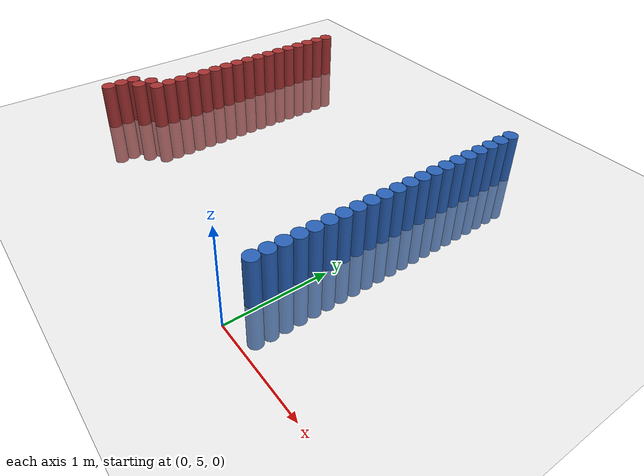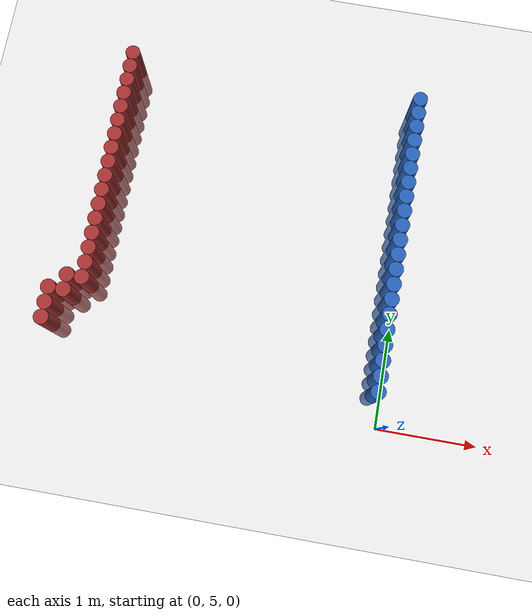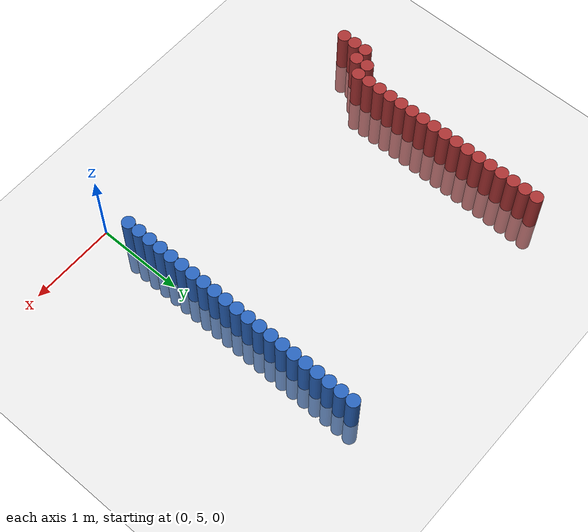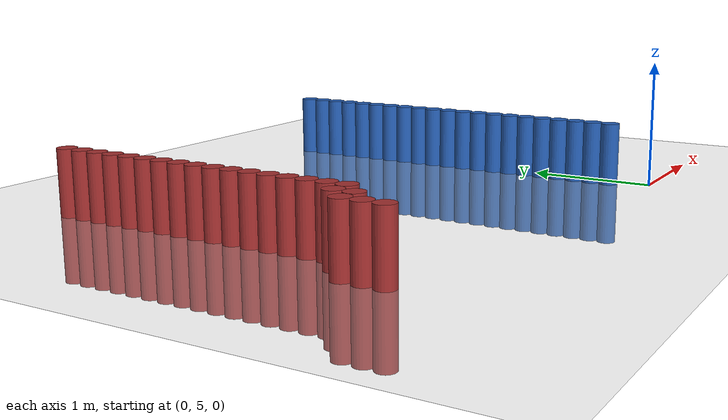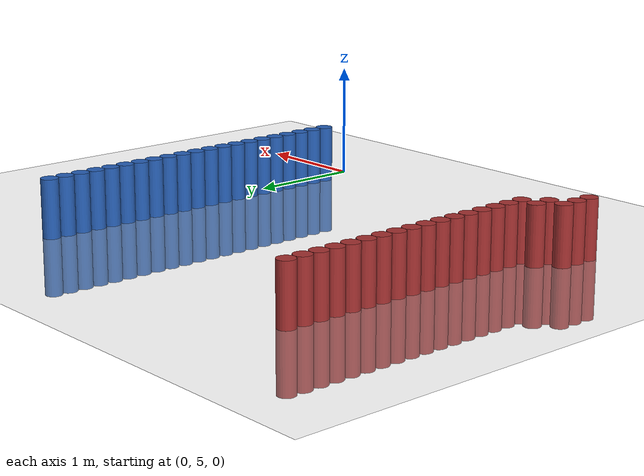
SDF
<sdf version="1.6">
 <world name="default">
  <model name="ground_plane">
   <static>1</static>
   <link name="link">
    <collision name="collision">
     <geometry><plane><normal>0 0 1</normal><size>100 100</size></plane></geometry>
     <surface><friction><ode><mu>100</mu><mu2>50</mu2></ode></friction></surface>
    </collision>
    <visual name="visual">
     <cast_shadows>0</cast_shadows>
     <geometry><plane><normal>0 0 1</normal><size>100 100</size></plane></geometry>
     <material>
      <script><uri>file://media/materials/scripts/gazebo.material</uri><name>Gazebo/Grey</name></script>
     </material>
    </visual>
   </link>
  </model>
  <model name="unit_cylinder_282">
   <static>1</static>
   <pose>-3.375000 5.475000 0.000000 0.000000 0.000000 0.000000</pose>
   <link name="link">
    <inertial>
     <mass>1</mass>
     <inertia><ixx>0.145833</ixx><ixy>0</ixy><ixz>0</ixz><iyy>0.145833</iyy><iyz>0</iyz><izz>0.125</izz></inertia>
    </inertial>
    <collision name="collision">
     <geometry><cylinder><radius>0.075000</radius><length>1</length></cylinder></geometry>
    </collision>
    <visual name="visual">
     <geometry><cylinder><radius>0.075000</radius><length>1</length></cylinder></geometry>
     <material>
      <ambient>0.648000 0.192000 0.192000 1</ambient>
      <diffuse>0.648000 0.192000 0.192000 1</diffuse>
     </material>
     <material>
      <script><name>Gazebo/Grey</name><uri>file://media/materials/scripts/gazebo.material</uri></script>
     </material>
    </visual>
   </link>
  </model>
  <model name="unit_cylinder_283">
   <static>1</static>
   <pose>-3.375000 5.625000 0.000000 0.000000 0.000000 0.000000</pose>
   <link name="link">
    <inertial>
     <mass>1</mass>
     <inertia><ixx>0.145833</ixx><ixy>0</ixy><ixz>0</ixz><iyy>0.145833</iyy><iyz>0</iyz><izz>0.125</izz></inertia>
    </inertial>
    <collision name="collision">
     <geometry><cylinder><radius>0.075000</radius><length>1</length></cylinder></geometry>
    </collision>
    <visual name="visual">
     <geometry><cylinder><radius>0.075000</radius><length>1</length></cylinder></geometry>
     <material>
      <ambient>0.648000 0.192000 0.192000 1</ambient>
      <diffuse>0.648000 0.192000 0.192000 1</diffuse>
     </material>
     <material>
      <script><name>Gazebo/Grey</name><uri>file://media/materials/scripts/gazebo.material</uri></script>
     </material>
    </visual>
   </link>
  </model>
  <model name="unit_cylinder_284">
   <static>1</static>
   <pose>-3.375000 5.775000 0.000000 0.000000 0.000000 0.000000</pose>
   <link name="link">
    <inertial>
     <mass>1</mass>
     <inertia><ixx>0.145833</ixx><ixy>0</ixy><ixz>0</ixz><iyy>0.145833</iyy><iyz>0</iyz><izz>0.125</izz></inertia>
    </inertial>
    <collision name="collision">
     <geometry><cylinder><radius>0.075000</radius><length>1</length></cylinder></geometry>
    </collision>
    <visual name="visual">
     <geometry><cylinder><radius>0.075000</radius><length>1</length></cylinder></geometry>
     <material>
      <ambient>0.648000 0.192000 0.192000 1</ambient>
      <diffuse>0.648000 0.192000 0.192000 1</diffuse>
     </material>
     <material>
      <script><name>Gazebo/Grey</name><uri>file://media/materials/scripts/gazebo.material</uri></script>
     </material>
    </visual>
   </link>
  </model>
  <model name="unit_cylinder_288">
   <static>1</static>
   <pose>-3.225000 5.775000 0.000000 0.000000 0.000000 0.000000</pose>
   <link name="link">
    <inertial>
     <mass>1</mass>
     <inertia><ixx>0.145833</ixx><ixy>0</ixy><ixz>0</ixz><iyy>0.145833</iyy><iyz>0</iyz><izz>0.125</izz></inertia>
    </inertial>
    <collision name="collision">
     <geometry><cylinder><radius>0.075000</radius><length>1</length></cylinder></geometry>
    </collision>
    <visual name="visual">
     <geometry><cylinder><radius>0.075000</radius><length>1</length></cylinder></geometry>
     <material>
      <ambient>0.648000 0.192000 0.192000 1</ambient>
      <diffuse>0.648000 0.192000 0.192000 1</diffuse>
     </material>
     <material>
      <script><name>Gazebo/Grey</name><uri>file://media/materials/scripts/gazebo.material</uri></script>
     </material>
    </visual>
   </link>
  </model>
  <model name="unit_cylinder_289">
   <static>1</static>
   <pose>-3.225000 5.925000 0.000000 0.000000 0.000000 0.000000</pose>
   <link name="link">
    <inertial>
     <mass>1</mass>
     <inertia><ixx>0.145833</ixx><ixy>0</ixy><ixz>0</ixz><iyy>0.145833</iyy><iyz>0</iyz><izz>0.125</izz></inertia>
    </inertial>
    <collision name="collision">
     <geometry><cylinder><radius>0.075000</radius><length>1</length></cylinder></geometry>
    </collision>
    <visual name="visual">
     <geometry><cylinder><radius>0.075000</radius><length>1</length></cylinder></geometry>
     <material>
      <ambient>0.648000 0.192000 0.192000 1</ambient>
      <diffuse>0.648000 0.192000 0.192000 1</diffuse>
     </material>
     <material>
      <script><name>Gazebo/Grey</name><uri>file://media/materials/scripts/gazebo.material</uri></script>
     </material>
    </visual>
   </link>
  </model>
  <model name="unit_cylinder_295">
   <static>1</static>
   <pose>-3.075000 5.925000 0.000000 0.000000 0.000000 0.000000</pose>
   <link name="link">
    <inertial>
     <mass>1</mass>
     <inertia><ixx>0.145833</ixx><ixy>0</ixy><ixz>0</ixz><iyy>0.145833</iyy><iyz>0</iyz><izz>0.125</izz></inertia>
    </inertial>
    <collision name="collision">
     <geometry><cylinder><radius>0.075000</radius><length>1</length></cylinder></geometry>
    </collision>
    <visual name="visual">
     <geometry><cylinder><radius>0.075000</radius><length>1</length></cylinder></geometry>
     <material>
      <ambient>0.648000 0.192000 0.192000 1</ambient>
      <diffuse>0.648000 0.192000 0.192000 1</diffuse>
     </material>
     <material>
      <script><name>Gazebo/Grey</name><uri>file://media/materials/scripts/gazebo.material</uri></script>
     </material>
    </visual>
   </link>
  </model>
  <model name="unit_cylinder_296">
   <static>1</static>
   <pose>-3.075000 6.075000 0.000000 0.000000 0.000000 0.000000</pose>
   <link name="link">
    <inertial>
     <mass>1</mass>
     <inertia><ixx>0.145833</ixx><ixy>0</ixy><ixz>0</ixz><iyy>0.145833</iyy><iyz>0</iyz><izz>0.125</izz></inertia>
    </inertial>
    <collision name="collision">
     <geometry><cylinder><radius>0.075000</radius><length>1</length></cylinder></geometry>
    </collision>
    <visual name="visual">
     <geometry><cylinder><radius>0.075000</radius><length>1</length></cylinder></geometry>
     <material>
      <ambient>0.648000 0.192000 0.192000 1</ambient>
      <diffuse>0.648000 0.192000 0.192000 1</diffuse>
     </material>
     <material>
      <script><name>Gazebo/Grey</name><uri>file://media/materials/scripts/gazebo.material</uri></script>
     </material>
    </visual>
   </link>
  </model>
  <model name="unit_cylinder_297">
   <static>1</static>
   <pose>-3.075000 6.225000 0.000000 0.000000 0.000000 0.000000</pose>
   <link name="link">
    <inertial>
     <mass>1</mass>
     <inertia><ixx>0.145833</ixx><ixy>0</ixy><ixz>0</ixz><iyy>0.145833</iyy><iyz>0</iyz><izz>0.125</izz></inertia>
    </inertial>
    <collision name="collision">
     <geometry><cylinder><radius>0.075000</radius><length>1</length></cylinder></geometry>
    </collision>
    <visual name="visual">
     <geometry><cylinder><radius>0.075000</radius><length>1</length></cylinder></geometry>
     <material>
      <ambient>0.648000 0.192000 0.192000 1</ambient>
      <diffuse>0.648000 0.192000 0.192000 1</diffuse>
     </material>
     <material>
      <script><name>Gazebo/Grey</name><uri>file://media/materials/scripts/gazebo.material</uri></script>
     </material>
    </visual>
   </link>
  </model>
  <model name="unit_cylinder_298">
   <static>1</static>
   <pose>-3.075000 6.375000 0.000000 0.000000 0.000000 0.000000</pose>
   <link name="link">
    <inertial>
     <mass>1</mass>
     <inertia><ixx>0.145833</ixx><ixy>0</ixy><ixz>0</ixz><iyy>0.145833</iyy><iyz>0</iyz><izz>0.125</izz></inertia>
    </inertial>
    <collision name="collision">
     <geometry><cylinder><radius>0.075000</radius><length>1</length></cylinder></geometry>
    </collision>
    <visual name="visual">
     <geometry><cylinder><radius>0.075000</radius><length>1</length></cylinder></geometry>
     <material>
      <ambient>0.648000 0.192000 0.192000 1</ambient>
      <diffuse>0.648000 0.192000 0.192000 1</diffuse>
     </material>
     <material>
      <script><name>Gazebo/Grey</name><uri>file://media/materials/scripts/gazebo.material</uri></script>
     </material>
    </visual>
   </link>
  </model>
  <model name="unit_cylinder_299">
   <static>1</static>
   <pose>-3.075000 6.525000 0.000000 0.000000 0.000000 0.000000</pose>
   <link name="link">
    <inertial>
     <mass>1</mass>
     <inertia><ixx>0.145833</ixx><ixy>0</ixy><ixz>0</ixz><iyy>0.145833</iyy><iyz>0</iyz><izz>0.125</izz></inertia>
    </inertial>
    <collision name="collision">
     <geometry><cylinder><radius>0.075000</radius><length>1</length></cylinder></geometry>
    </collision>
    <visual name="visual">
     <geometry><cylinder><radius>0.075000</radius><length>1</length></cylinder></geometry>
     <material>
      <ambient>0.648000 0.192000 0.192000 1</ambient>
      <diffuse>0.648000 0.192000 0.192000 1</diffuse>
     </material>
     <material>
      <script><name>Gazebo/Grey</name><uri>file://media/materials/scripts/gazebo.material</uri></script>
     </material>
    </visual>
   </link>
  </model>
  <model name="unit_cylinder_300">
   <static>1</static>
   <pose>-3.075000 6.675000 0.000000 0.000000 0.000000 0.000000</pose>
   <link name="link">
    <inertial>
     <mass>1</mass>
     <inertia><ixx>0.145833</ixx><ixy>0</ixy><ixz>0</ixz><iyy>0.145833</iyy><iyz>0</iyz><izz>0.125</izz></inertia>
    </inertial>
    <collision name="collision">
     <geometry><cylinder><radius>0.075000</radius><length>1</length></cylinder></geometry>
    </collision>
    <visual name="visual">
     <geometry><cylinder><radius>0.075000</radius><length>1</length></cylinder></geometry>
     <material>
      <ambient>0.648000 0.192000 0.192000 1</ambient>
      <diffuse>0.648000 0.192000 0.192000 1</diffuse>
     </material>
     <material>
      <script><name>Gazebo/Grey</name><uri>file://media/materials/scripts/gazebo.material</uri></script>
     </material>
    </visual>
   </link>
  </model>
  <model name="unit_cylinder_301">
   <static>1</static>
   <pose>-3.075000 6.825000 0.000000 0.000000 0.000000 0.000000</pose>
   <link name="link">
    <inertial>
     <mass>1</mass>
     <inertia><ixx>0.145833</ixx><ixy>0</ixy><ixz>0</ixz><iyy>0.145833</iyy><iyz>0</iyz><izz>0.125</izz></inertia>
    </inertial>
    <collision name="collision">
     <geometry><cylinder><radius>0.075000</radius><length>1</length></cylinder></geometry>
    </collision>
    <visual name="visual">
     <geometry><cylinder><radius>0.075000</radius><length>1</length></cylinder></geometry>
     <material>
      <ambient>0.648000 0.192000 0.192000 1</ambient>
      <diffuse>0.648000 0.192000 0.192000 1</diffuse>
     </material>
     <material>
      <script><name>Gazebo/Grey</name><uri>file://media/materials/scripts/gazebo.material</uri></script>
     </material>
    </visual>
   </link>
  </model>
  <model name="unit_cylinder_302">
   <static>1</static>
   <pose>-3.075000 6.975000 0.000000 0.000000 0.000000 0.000000</pose>
   <link name="link">
    <inertial>
     <mass>1</mass>
     <inertia><ixx>0.145833</ixx><ixy>0</ixy><ixz>0</ixz><iyy>0.145833</iyy><iyz>0</iyz><izz>0.125</izz></inertia>
    </inertial>
    <collision name="collision">
     <geometry><cylinder><radius>0.075000</radius><length>1</length></cylinder></geometry>
    </collision>
    <visual name="visual">
     <geometry><cylinder><radius>0.075000</radius><length>1</length></cylinder></geometry>
     <material>
      <ambient>0.648000 0.192000 0.192000 1</ambient>
      <diffuse>0.648000 0.192000 0.192000 1</diffuse>
     </material>
     <material>
      <script><name>Gazebo/Grey</name><uri>file://media/materials/scripts/gazebo.material</uri></script>
     </material>
    </visual>
   </link>
  </model>
  <model name="unit_cylinder_303">
   <static>1</static>
   <pose>-3.075000 7.125000 0.000000 0.000000 0.000000 0.000000</pose>
   <link name="link">
    <inertial>
     <mass>1</mass>
     <inertia><ixx>0.145833</ixx><ixy>0</ixy><ixz>0</ixz><iyy>0.145833</iyy><iyz>0</iyz><izz>0.125</izz></inertia>
    </inertial>
    <collision name="collision">
     <geometry><cylinder><radius>0.075000</radius><length>1</length></cylinder></geometry>
    </collision>
    <visual name="visual">
     <geometry><cylinder><radius>0.075000</radius><length>1</length></cylinder></geometry>
     <material>
      <ambient>0.648000 0.192000 0.192000 1</ambient>
      <diffuse>0.648000 0.192000 0.192000 1</diffuse>
     </material>
     <material>
      <script><name>Gazebo/Grey</name><uri>file://media/materials/scripts/gazebo.material</uri></script>
     </material>
    </visual>
   </link>
  </model>
  <model name="unit_cylinder_304">
   <static>1</static>
   <pose>-3.075000 7.275000 0.000000 0.000000 0.000000 0.000000</pose>
   <link name="link">
    <inertial>
     <mass>1</mass>
     <inertia><ixx>0.145833</ixx><ixy>0</ixy><ixz>0</ixz><iyy>0.145833</iyy><iyz>0</iyz><izz>0.125</izz></inertia>
    </inertial>
    <collision name="collision">
     <geometry><cylinder><radius>0.075000</radius><length>1</length></cylinder></geometry>
    </collision>
    <visual name="visual">
     <geometry><cylinder><radius>0.075000</radius><length>1</length></cylinder></geometry>
     <material>
      <ambient>0.648000 0.192000 0.192000 1</ambient>
      <diffuse>0.648000 0.192000 0.192000 1</diffuse>
     </material>
     <material>
      <script><name>Gazebo/Grey</name><uri>file://media/materials/scripts/gazebo.material</uri></script>
     </material>
    </visual>
   </link>
  </model>
  <model name="unit_cylinder_305">
   <static>1</static>
   <pose>-3.075000 7.425000 0.000000 0.000000 0.000000 0.000000</pose>
   <link name="link">
    <inertial>
     <mass>1</mass>
     <inertia><ixx>0.145833</ixx><ixy>0</ixy><ixz>0</ixz><iyy>0.145833</iyy><iyz>0</iyz><izz>0.125</izz></inertia>
    </inertial>
    <collision name="collision">
     <geometry><cylinder><radius>0.075000</radius><length>1</length></cylinder></geometry>
    </collision>
    <visual name="visual">
     <geometry><cylinder><radius>0.075000</radius><length>1</length></cylinder></geometry>
     <material>
      <ambient>0.648000 0.192000 0.192000 1</ambient>
      <diffuse>0.648000 0.192000 0.192000 1</diffuse>
     </material>
     <material>
      <script><name>Gazebo/Grey</name><uri>file://media/materials/scripts/gazebo.material</uri></script>
     </material>
    </visual>
   </link>
  </model>
  <model name="unit_cylinder_306">
   <static>1</static>
   <pose>-3.075000 7.575000 0.000000 0.000000 0.000000 0.000000</pose>
   <link name="link">
    <inertial>
     <mass>1</mass>
     <inertia><ixx>0.145833</ixx><ixy>0</ixy><ixz>0</ixz><iyy>0.145833</iyy><iyz>0</iyz><izz>0.125</izz></inertia>
    </inertial>
    <collision name="collision">
     <geometry><cylinder><radius>0.075000</radius><length>1</length></cylinder></geometry>
    </collision>
    <visual name="visual">
     <geometry><cylinder><radius>0.075000</radius><length>1</length></cylinder></geometry>
     <material>
      <ambient>0.648000 0.192000 0.192000 1</ambient>
      <diffuse>0.648000 0.192000 0.192000 1</diffuse>
     </material>
     <material>
      <script><name>Gazebo/Grey</name><uri>file://media/materials/scripts/gazebo.material</uri></script>
     </material>
    </visual>
   </link>
  </model>
  <model name="unit_cylinder_307">
   <static>1</static>
   <pose>-3.075000 7.725000 0.000000 0.000000 0.000000 0.000000</pose>
   <link name="link">
    <inertial>
     <mass>1</mass>
     <inertia><ixx>0.145833</ixx><ixy>0</ixy><ixz>0</ixz><iyy>0.145833</iyy><iyz>0</iyz><izz>0.125</izz></inertia>
    </inertial>
    <collision name="collision">
     <geometry><cylinder><radius>0.075000</radius><length>1</length></cylinder></geometry>
    </collision>
    <visual name="visual">
     <geometry><cylinder><radius>0.075000</radius><length>1</length></cylinder></geometry>
     <material>
      <ambient>0.648000 0.192000 0.192000 1</ambient>
      <diffuse>0.648000 0.192000 0.192000 1</diffuse>
     </material>
     <material>
      <script><name>Gazebo/Grey</name><uri>file://media/materials/scripts/gazebo.material</uri></script>
     </material>
    </visual>
   </link>
  </model>
  <model name="unit_cylinder_308">
   <static>1</static>
   <pose>-3.075000 7.875000 0.000000 0.000000 0.000000 0.000000</pose>
   <link name="link">
    <inertial>
     <mass>1</mass>
     <inertia><ixx>0.145833</ixx><ixy>0</ixy><ixz>0</ixz><iyy>0.145833</iyy><iyz>0</iyz><izz>0.125</izz></inertia>
    </inertial>
    <collision name="collision">
     <geometry><cylinder><radius>0.075000</radius><length>1</length></cylinder></geometry>
    </collision>
    <visual name="visual">
     <geometry><cylinder><radius>0.075000</radius><length>1</length></cylinder></geometry>
     <material>
      <ambient>0.648000 0.192000 0.192000 1</ambient>
      <diffuse>0.648000 0.192000 0.192000 1</diffuse>
     </material>
     <material>
      <script><name>Gazebo/Grey</name><uri>file://media/materials/scripts/gazebo.material</uri></script>
     </material>
    </visual>
   </link>
  </model>
  <model name="unit_cylinder_309">
   <static>1</static>
   <pose>-3.075000 8.025000 0.000000 0.000000 0.000000 0.000000</pose>
   <link name="link">
    <inertial>
     <mass>1</mass>
     <inertia><ixx>0.145833</ixx><ixy>0</ixy><ixz>0</ixz><iyy>0.145833</iyy><iyz>0</iyz><izz>0.125</izz></inertia>
    </inertial>
    <collision name="collision">
     <geometry><cylinder><radius>0.075000</radius><length>1</length></cylinder></geometry>
    </collision>
    <visual name="visual">
     <geometry><cylinder><radius>0.075000</radius><length>1</length></cylinder></geometry>
     <material>
      <ambient>0.648000 0.192000 0.192000 1</ambient>
      <diffuse>0.648000 0.192000 0.192000 1</diffuse>
     </material>
     <material>
      <script><name>Gazebo/Grey</name><uri>file://media/materials/scripts/gazebo.material</uri></script>
     </material>
    </visual>
   </link>
  </model>
  <model name="unit_cylinder_310">
   <static>1</static>
   <pose>-3.075000 8.175000 0.000000 0.000000 0.000000 0.000000</pose>
   <link name="link">
    <inertial>
     <mass>1</mass>
     <inertia><ixx>0.145833</ixx><ixy>0</ixy><ixz>0</ixz><iyy>0.145833</iyy><iyz>0</iyz><izz>0.125</izz></inertia>
    </inertial>
    <collision name="collision">
     <geometry><cylinder><radius>0.075000</radius><length>1</length></cylinder></geometry>
    </collision>
    <visual name="visual">
     <geometry><cylinder><radius>0.075000</radius><length>1</length></cylinder></geometry>
     <material>
      <ambient>0.648000 0.192000 0.192000 1</ambient>
      <diffuse>0.648000 0.192000 0.192000 1</diffuse>
     </material>
     <material>
      <script><name>Gazebo/Grey</name><uri>file://media/materials/scripts/gazebo.material</uri></script>
     </material>
    </visual>
   </link>
  </model>
  <model name="unit_cylinder_311">
   <static>1</static>
   <pose>-3.075000 8.325000 0.000000 0.000000 0.000000 0.000000</pose>
   <link name="link">
    <inertial>
     <mass>1</mass>
     <inertia><ixx>0.145833</ixx><ixy>0</ixy><ixz>0</ixz><iyy>0.145833</iyy><iyz>0</iyz><izz>0.125</izz></inertia>
    </inertial>
    <collision name="collision">
     <geometry><cylinder><radius>0.075000</radius><length>1</length></cylinder></geometry>
    </collision>
    <visual name="visual">
     <geometry><cylinder><radius>0.075000</radius><length>1</length></cylinder></geometry>
     <material>
      <ambient>0.648000 0.192000 0.192000 1</ambient>
      <diffuse>0.648000 0.192000 0.192000 1</diffuse>
     </material>
     <material>
      <script><name>Gazebo/Grey</name><uri>file://media/materials/scripts/gazebo.material</uri></script>
     </material>
    </visual>
   </link>
  </model>
  <model name="unit_cylinder_354">
   <static>1</static>
   <pose>-0.075000 5.325000 0.000000 0.000000 0.000000 0.000000</pose>
   <link name="link">
    <inertial>
     <mass>1</mass>
     <inertia><ixx>0.145833</ixx><ixy>0</ixy><ixz>0</ixz><iyy>0.145833</iyy><iyz>0</iyz><izz>0.125</izz></inertia>
    </inertial>
    <collision name="collision">
     <geometry><cylinder><radius>0.075000</radius><length>1</length></cylinder></geometry>
    </collision>
    <visual name="visual">
     <geometry><cylinder><radius>0.075000</radius><length>1</length></cylinder></geometry>
     <material>
      <ambient>0.152000 0.379000 0.720000 1</ambient>
      <diffuse>0.152000 0.379000 0.720000 1</diffuse>
     </material>
     <material>
      <script><name>Gazebo/Grey</name><uri>file://media/materials/scripts/gazebo.material</uri></script>
     </material>
    </visual>
   </link>
  </model>
  <model name="unit_cylinder_355">
   <static>1</static>
   <pose>-0.075000 5.475000 0.000000 0.000000 0.000000 0.000000</pose>
   <link name="link">
    <inertial>
     <mass>1</mass>
     <inertia><ixx>0.145833</ixx><ixy>0</ixy><ixz>0</ixz><iyy>0.145833</iyy><iyz>0</iyz><izz>0.125</izz></inertia>
    </inertial>
    <collision name="collision">
     <geometry><cylinder><radius>0.075000</radius><length>1</length></cylinder></geometry>
    </collision>
    <visual name="visual">
     <geometry><cylinder><radius>0.075000</radius><length>1</length></cylinder></geometry>
     <material>
      <ambient>0.152000 0.379000 0.720000 1</ambient>
      <diffuse>0.152000 0.379000 0.720000 1</diffuse>
     </material>
     <material>
      <script><name>Gazebo/Grey</name><uri>file://media/materials/scripts/gazebo.material</uri></script>
     </material>
    </visual>
   </link>
  </model>
  <model name="unit_cylinder_356">
   <static>1</static>
   <pose>-0.075000 5.625000 0.000000 0.000000 0.000000 0.000000</pose>
   <link name="link">
    <inertial>
     <mass>1</mass>
     <inertia><ixx>0.145833</ixx><ixy>0</ixy><ixz>0</ixz><iyy>0.145833</iyy><iyz>0</iyz><izz>0.125</izz></inertia>
    </inertial>
    <collision name="collision">
     <geometry><cylinder><radius>0.075000</radius><length>1</length></cylinder></geometry>
    </collision>
    <visual name="visual">
     <geometry><cylinder><radius>0.075000</radius><length>1</length></cylinder></geometry>
     <material>
      <ambient>0.152000 0.379000 0.720000 1</ambient>
      <diffuse>0.152000 0.379000 0.720000 1</diffuse>
     </material>
     <material>
      <script><name>Gazebo/Grey</name><uri>file://media/materials/scripts/gazebo.material</uri></script>
     </material>
    </visual>
   </link>
  </model>
  <model name="unit_cylinder_357">
   <static>1</static>
   <pose>-0.075000 5.775000 0.000000 0.000000 0.000000 0.000000</pose>
   <link name="link">
    <inertial>
     <mass>1</mass>
     <inertia><ixx>0.145833</ixx><ixy>0</ixy><ixz>0</ixz><iyy>0.145833</iyy><iyz>0</iyz><izz>0.125</izz></inertia>
    </inertial>
    <collision name="collision">
     <geometry><cylinder><radius>0.075000</radius><length>1</length></cylinder></geometry>
    </collision>
    <visual name="visual">
     <geometry><cylinder><radius>0.075000</radius><length>1</length></cylinder></geometry>
     <material>
      <ambient>0.152000 0.379000 0.720000 1</ambient>
      <diffuse>0.152000 0.379000 0.720000 1</diffuse>
     </material>
     <material>
      <script><name>Gazebo/Grey</name><uri>file://media/materials/scripts/gazebo.material</uri></script>
     </material>
    </visual>
   </link>
  </model>
  <model name="unit_cylinder_358">
   <static>1</static>
   <pose>-0.075000 5.925000 0.000000 0.000000 0.000000 0.000000</pose>
   <link name="link">
    <inertial>
     <mass>1</mass>
     <inertia><ixx>0.145833</ixx><ixy>0</ixy><ixz>0</ixz><iyy>0.145833</iyy><iyz>0</iyz><izz>0.125</izz></inertia>
    </inertial>
    <collision name="collision">
     <geometry><cylinder><radius>0.075000</radius><length>1</length></cylinder></geometry>
    </collision>
    <visual name="visual">
     <geometry><cylinder><radius>0.075000</radius><length>1</length></cylinder></geometry>
     <material>
      <ambient>0.152000 0.379000 0.720000 1</ambient>
      <diffuse>0.152000 0.379000 0.720000 1</diffuse>
     </material>
     <material>
      <script><name>Gazebo/Grey</name><uri>file://media/materials/scripts/gazebo.material</uri></script>
     </material>
    </visual>
   </link>
  </model>
  <model name="unit_cylinder_359">
   <static>1</static>
   <pose>-0.075000 6.075000 0.000000 0.000000 0.000000 0.000000</pose>
   <link name="link">
    <inertial>
     <mass>1</mass>
     <inertia><ixx>0.145833</ixx><ixy>0</ixy><ixz>0</ixz><iyy>0.145833</iyy><iyz>0</iyz><izz>0.125</izz></inertia>
    </inertial>
    <collision name="collision">
     <geometry><cylinder><radius>0.075000</radius><length>1</length></cylinder></geometry>
    </collision>
    <visual name="visual">
     <geometry><cylinder><radius>0.075000</radius><length>1</length></cylinder></geometry>
     <material>
      <ambient>0.152000 0.379000 0.720000 1</ambient>
      <diffuse>0.152000 0.379000 0.720000 1</diffuse>
     </material>
     <material>
      <script><name>Gazebo/Grey</name><uri>file://media/materials/scripts/gazebo.material</uri></script>
     </material>
    </visual>
   </link>
  </model>
  <model name="unit_cylinder_360">
   <static>1</static>
   <pose>-0.075000 6.225000 0.000000 0.000000 0.000000 0.000000</pose>
   <link name="link">
    <inertial>
     <mass>1</mass>
     <inertia><ixx>0.145833</ixx><ixy>0</ixy><ixz>0</ixz><iyy>0.145833</iyy><iyz>0</iyz><izz>0.125</izz></inertia>
    </inertial>
    <collision name="collision">
     <geometry><cylinder><radius>0.075000</radius><length>1</length></cylinder></geometry>
    </collision>
    <visual name="visual">
     <geometry><cylinder><radius>0.075000</radius><length>1</length></cylinder></geometry>
     <material>
      <ambient>0.152000 0.379000 0.720000 1</ambient>
      <diffuse>0.152000 0.379000 0.720000 1</diffuse>
     </material>
     <material>
      <script><name>Gazebo/Grey</name><uri>file://media/materials/scripts/gazebo.material</uri></script>
     </material>
    </visual>
   </link>
  </model>
  <model name="unit_cylinder_361">
   <static>1</static>
   <pose>-0.075000 6.375000 0.000000 0.000000 0.000000 0.000000</pose>
   <link name="link">
    <inertial>
     <mass>1</mass>
     <inertia><ixx>0.145833</ixx><ixy>0</ixy><ixz>0</ixz><iyy>0.145833</iyy><iyz>0</iyz><izz>0.125</izz></inertia>
    </inertial>
    <collision name="collision">
     <geometry><cylinder><radius>0.075000</radius><length>1</length></cylinder></geometry>
    </collision>
    <visual name="visual">
     <geometry><cylinder><radius>0.075000</radius><length>1</length></cylinder></geometry>
     <material>
      <ambient>0.152000 0.379000 0.720000 1</ambient>
      <diffuse>0.152000 0.379000 0.720000 1</diffuse>
     </material>
     <material>
      <script><name>Gazebo/Grey</name><uri>file://media/materials/scripts/gazebo.material</uri></script>
     </material>
    </visual>
   </link>
  </model>
  <model name="unit_cylinder_362">
   <static>1</static>
   <pose>-0.075000 6.525000 0.000000 0.000000 0.000000 0.000000</pose>
   <link name="link">
    <inertial>
     <mass>1</mass>
     <inertia><ixx>0.145833</ixx><ixy>0</ixy><ixz>0</ixz><iyy>0.145833</iyy><iyz>0</iyz><izz>0.125</izz></inertia>
    </inertial>
    <collision name="collision">
     <geometry><cylinder><radius>0.075000</radius><length>1</length></cylinder></geometry>
    </collision>
    <visual name="visual">
     <geometry><cylinder><radius>0.075000</radius><length>1</length></cylinder></geometry>
     <material>
      <ambient>0.152000 0.379000 0.720000 1</ambient>
      <diffuse>0.152000 0.379000 0.720000 1</diffuse>
     </material>
     <material>
      <script><name>Gazebo/Grey</name><uri>file://media/materials/scripts/gazebo.material</uri></script>
     </material>
    </visual>
   </link>
  </model>
  <model name="unit_cylinder_363">
   <static>1</static>
   <pose>-0.075000 6.675000 0.000000 0.000000 0.000000 0.000000</pose>
   <link name="link">
    <inertial>
     <mass>1</mass>
     <inertia><ixx>0.145833</ixx><ixy>0</ixy><ixz>0</ixz><iyy>0.145833</iyy><iyz>0</iyz><izz>0.125</izz></inertia>
    </inertial>
    <collision name="collision">
     <geometry><cylinder><radius>0.075000</radius><length>1</length></cylinder></geometry>
    </collision>
    <visual name="visual">
     <geometry><cylinder><radius>0.075000</radius><length>1</length></cylinder></geometry>
     <material>
      <ambient>0.152000 0.379000 0.720000 1</ambient>
      <diffuse>0.152000 0.379000 0.720000 1</diffuse>
     </material>
     <material>
      <script><name>Gazebo/Grey</name><uri>file://media/materials/scripts/gazebo.material</uri></script>
     </material>
    </visual>
   </link>
  </model>
  <model name="unit_cylinder_364">
   <static>1</static>
   <pose>-0.075000 6.825000 0.000000 0.000000 0.000000 0.000000</pose>
   <link name="link">
    <inertial>
     <mass>1</mass>
     <inertia><ixx>0.145833</ixx><ixy>0</ixy><ixz>0</ixz><iyy>0.145833</iyy><iyz>0</iyz><izz>0.125</izz></inertia>
    </inertial>
    <collision name="collision">
     <geometry><cylinder><radius>0.075000</radius><length>1</length></cylinder></geometry>
    </collision>
    <visual name="visual">
     <geometry><cylinder><radius>0.075000</radius><length>1</length></cylinder></geometry>
     <material>
      <ambient>0.152000 0.379000 0.720000 1</ambient>
      <diffuse>0.152000 0.379000 0.720000 1</diffuse>
     </material>
     <material>
      <script><name>Gazebo/Grey</name><uri>file://media/materials/scripts/gazebo.material</uri></script>
     </material>
    </visual>
   </link>
  </model>
  <model name="unit_cylinder_365">
   <static>1</static>
   <pose>-0.075000 6.975000 0.000000 0.000000 0.000000 0.000000</pose>
   <link name="link">
    <inertial>
     <mass>1</mass>
     <inertia><ixx>0.145833</ixx><ixy>0</ixy><ixz>0</ixz><iyy>0.145833</iyy><iyz>0</iyz><izz>0.125</izz></inertia>
    </inertial>
    <collision name="collision">
     <geometry><cylinder><radius>0.075000</radius><length>1</length></cylinder></geometry>
    </collision>
    <visual name="visual">
     <geometry><cylinder><radius>0.075000</radius><length>1</length></cylinder></geometry>
     <material>
      <ambient>0.152000 0.379000 0.720000 1</ambient>
      <diffuse>0.152000 0.379000 0.720000 1</diffuse>
     </material>
     <material>
      <script><name>Gazebo/Grey</name><uri>file://media/materials/scripts/gazebo.material</uri></script>
     </material>
    </visual>
   </link>
  </model>
  <model name="unit_cylinder_366">
   <static>1</static>
   <pose>-0.075000 7.125000 0.000000 0.000000 0.000000 0.000000</pose>
   <link name="link">
    <inertial>
     <mass>1</mass>
     <inertia><ixx>0.145833</ixx><ixy>0</ixy><ixz>0</ixz><iyy>0.145833</iyy><iyz>0</iyz><izz>0.125</izz></inertia>
    </inertial>
    <collision name="collision">
     <geometry><cylinder><radius>0.075000</radius><length>1</length></cylinder></geometry>
    </collision>
    <visual name="visual">
     <geometry><cylinder><radius>0.075000</radius><length>1</length></cylinder></geometry>
     <material>
      <ambient>0.152000 0.379000 0.720000 1</ambient>
      <diffuse>0.152000 0.379000 0.720000 1</diffuse>
     </material>
     <material>
      <script><name>Gazebo/Grey</name><uri>file://media/materials/scripts/gazebo.material</uri></script>
     </material>
    </visual>
   </link>
  </model>
  <model name="unit_cylinder_367">
   <static>1</static>
   <pose>-0.075000 7.275000 0.000000 0.000000 0.000000 0.000000</pose>
   <link name="link">
    <inertial>
     <mass>1</mass>
     <inertia><ixx>0.145833</ixx><ixy>0</ixy><ixz>0</ixz><iyy>0.145833</iyy><iyz>0</iyz><izz>0.125</izz></inertia>
    </inertial>
    <collision name="collision">
     <geometry><cylinder><radius>0.075000</radius><length>1</length></cylinder></geometry>
    </collision>
    <visual name="visual">
     <geometry><cylinder><radius>0.075000</radius><length>1</length></cylinder></geometry>
     <material>
      <ambient>0.152000 0.379000 0.720000 1</ambient>
      <diffuse>0.152000 0.379000 0.720000 1</diffuse>
     </material>
     <material>
      <script><name>Gazebo/Grey</name><uri>file://media/materials/scripts/gazebo.material</uri></script>
     </material>
    </visual>
   </link>
  </model>
  <model name="unit_cylinder_368">
   <static>1</static>
   <pose>-0.075000 7.425000 0.000000 0.000000 0.000000 0.000000</pose>
   <link name="link">
    <inertial>
     <mass>1</mass>
     <inertia><ixx>0.145833</ixx><ixy>0</ixy><ixz>0</ixz><iyy>0.145833</iyy><iyz>0</iyz><izz>0.125</izz></inertia>
    </inertial>
    <collision name="collision">
     <geometry><cylinder><radius>0.075000</radius><length>1</length></cylinder></geometry>
    </collision>
    <visual name="visual">
     <geometry><cylinder><radius>0.075000</radius><length>1</length></cylinder></geometry>
     <material>
      <ambient>0.152000 0.379000 0.720000 1</ambient>
      <diffuse>0.152000 0.379000 0.720000 1</diffuse>
     </material>
     <material>
      <script><name>Gazebo/Grey</name><uri>file://media/materials/scripts/gazebo.material</uri></script>
     </material>
    </visual>
   </link>
  </model>
  <model name="unit_cylinder_369">
   <static>1</static>
   <pose>-0.075000 7.575000 0.000000 0.000000 0.000000 0.000000</pose>
   <link name="link">
    <inertial>
     <mass>1</mass>
     <inertia><ixx>0.145833</ixx><ixy>0</ixy><ixz>0</ixz><iyy>0.145833</iyy><iyz>0</iyz><izz>0.125</izz></inertia>
    </inertial>
    <collision name="collision">
     <geometry><cylinder><radius>0.075000</radius><length>1</length></cylinder></geometry>
    </collision>
    <visual name="visual">
     <geometry><cylinder><radius>0.075000</radius><length>1</length></cylinder></geometry>
     <material>
      <ambient>0.152000 0.379000 0.720000 1</ambient>
      <diffuse>0.152000 0.379000 0.720000 1</diffuse>
     </material>
     <material>
      <script><name>Gazebo/Grey</name><uri>file://media/materials/scripts/gazebo.material</uri></script>
     </material>
    </visual>
   </link>
  </model>
  <model name="unit_cylinder_370">
   <static>1</static>
   <pose>-0.075000 7.725000 0.000000 0.000000 0.000000 0.000000</pose>
   <link name="link">
    <inertial>
     <mass>1</mass>
     <inertia><ixx>0.145833</ixx><ixy>0</ixy><ixz>0</ixz><iyy>0.145833</iyy><iyz>0</iyz><izz>0.125</izz></inertia>
    </inertial>
    <collision name="collision">
     <geometry><cylinder><radius>0.075000</radius><length>1</length></cylinder></geometry>
    </collision>
    <visual name="visual">
     <geometry><cylinder><radius>0.075000</radius><length>1</length></cylinder></geometry>
     <material>
      <ambient>0.152000 0.379000 0.720000 1</ambient>
      <diffuse>0.152000 0.379000 0.720000 1</diffuse>
     </material>
     <material>
      <script><name>Gazebo/Grey</name><uri>file://media/materials/scripts/gazebo.material</uri></script>
     </material>
    </visual>
   </link>
  </model>
  <model name="unit_cylinder_371">
   <static>1</static>
   <pose>-0.075000 7.875000 0.000000 0.000000 0.000000 0.000000</pose>
   <link name="link">
    <inertial>
     <mass>1</mass>
     <inertia><ixx>0.145833</ixx><ixy>0</ixy><ixz>0</ixz><iyy>0.145833</iyy><iyz>0</iyz><izz>0.125</izz></inertia>
    </inertial>
    <collision name="collision">
     <geometry><cylinder><radius>0.075000</radius><length>1</length></cylinder></geometry>
    </collision>
    <visual name="visual">
     <geometry><cylinder><radius>0.075000</radius><length>1</length></cylinder></geometry>
     <material>
      <ambient>0.152000 0.379000 0.720000 1</ambient>
      <diffuse>0.152000 0.379000 0.720000 1</diffuse>
     </material>
     <material>
      <script><name>Gazebo/Grey</name><uri>file://media/materials/scripts/gazebo.material</uri></script>
     </material>
    </visual>
   </link>
  </model>
  <model name="unit_cylinder_372">
   <static>1</static>
   <pose>-0.075000 8.025000 0.000000 0.000000 0.000000 0.000000</pose>
   <link name="link">
    <inertial>
     <mass>1</mass>
     <inertia><ixx>0.145833</ixx><ixy>0</ixy><ixz>0</ixz><iyy>0.145833</iyy><iyz>0</iyz><izz>0.125</izz></inertia>
    </inertial>
    <collision name="collision">
     <geometry><cylinder><radius>0.075000</radius><length>1</length></cylinder></geometry>
    </collision>
    <visual name="visual">
     <geometry><cylinder><radius>0.075000</radius><length>1</length></cylinder></geometry>
     <material>
      <ambient>0.152000 0.379000 0.720000 1</ambient>
      <diffuse>0.152000 0.379000 0.720000 1</diffuse>
     </material>
     <material>
      <script><name>Gazebo/Grey</name><uri>file://media/materials/scripts/gazebo.material</uri></script>
     </material>
    </visual>
   </link>
  </model>
  <model name="unit_cylinder_373">
   <static>1</static>
   <pose>-0.075000 8.175000 0.000000 0.000000 0.000000 0.000000</pose>
   <link name="link">
    <inertial>
     <mass>1</mass>
     <inertia><ixx>0.145833</ixx><ixy>0</ixy><ixz>0</ixz><iyy>0.145833</iyy><iyz>0</iyz><izz>0.125</izz></inertia>
    </inertial>
    <collision name="collision">
     <geometry><cylinder><radius>0.075000</radius><length>1</length></cylinder></geometry>
    </collision>
    <visual name="visual">
     <geometry><cylinder><radius>0.075000</radius><length>1</length></cylinder></geometry>
     <material>
      <ambient>0.152000 0.379000 0.720000 1</ambient>
      <diffuse>0.152000 0.379000 0.720000 1</diffuse>
     </material>
     <material>
      <script><name>Gazebo/Grey</name><uri>file://media/materials/scripts/gazebo.material</uri></script>
     </material>
    </visual>
   </link>
  </model>
  <model name="unit_cylinder_374">
   <static>1</static>
   <pose>-0.075000 8.325000 0.000000 0.000000 0.000000 0.000000</pose>
   <link name="link">
    <inertial>
     <mass>1</mass>
     <inertia><ixx>0.145833</ixx><ixy>0</ixy><ixz>0</ixz><iyy>0.145833</iyy><iyz>0</iyz><izz>0.125</izz></inertia>
    </inertial>
    <collision name="collision">
     <geometry><cylinder><radius>0.075000</radius><length>1</length></cylinder></geometry>
    </collision>
    <visual name="visual">
     <geometry><cylinder><radius>0.075000</radius><length>1</length></cylinder></geometry>
     <material>
      <ambient>0.152000 0.379000 0.720000 1</ambient>
      <diffuse>0.152000 0.379000 0.720000 1</diffuse>
     </material>
     <material>
      <script><name>Gazebo/Grey</name><uri>file://media/materials/scripts/gazebo.material</uri></script>
     </material>
    </visual>
   </link>
  </model>
 </world>
</sdf>
